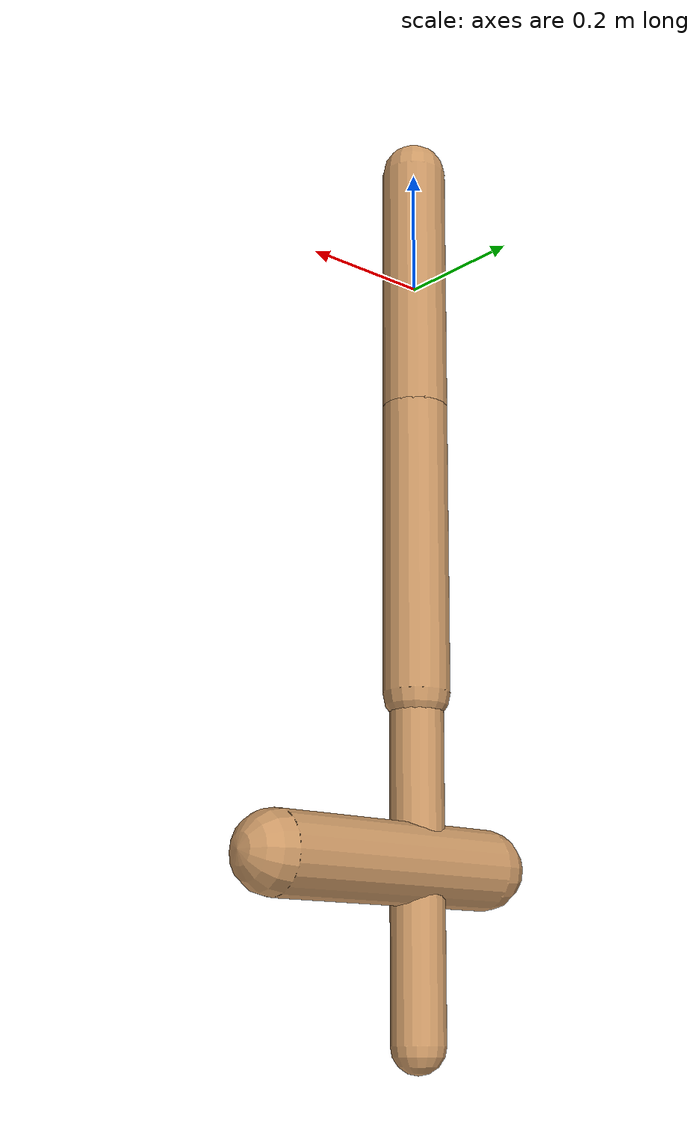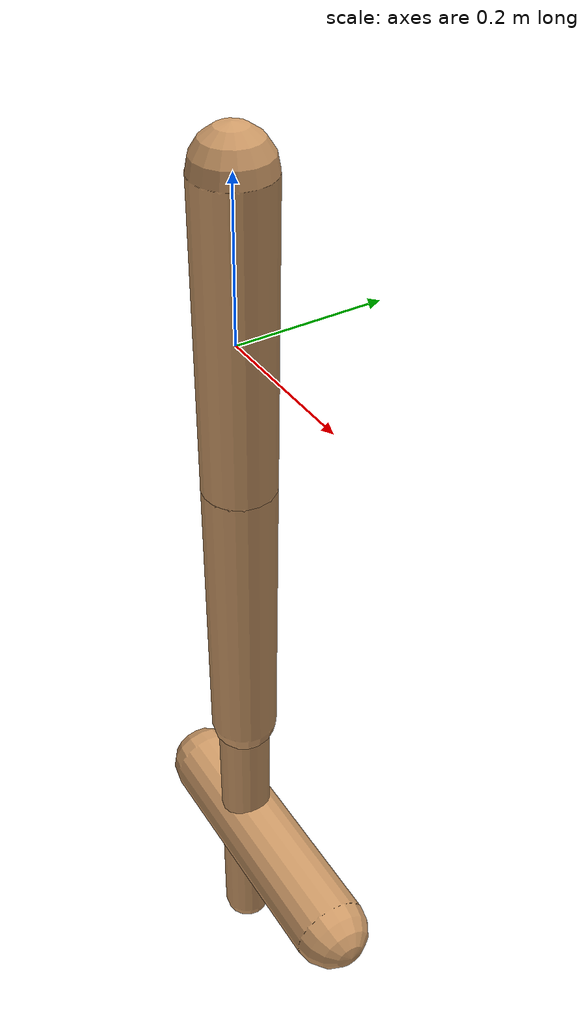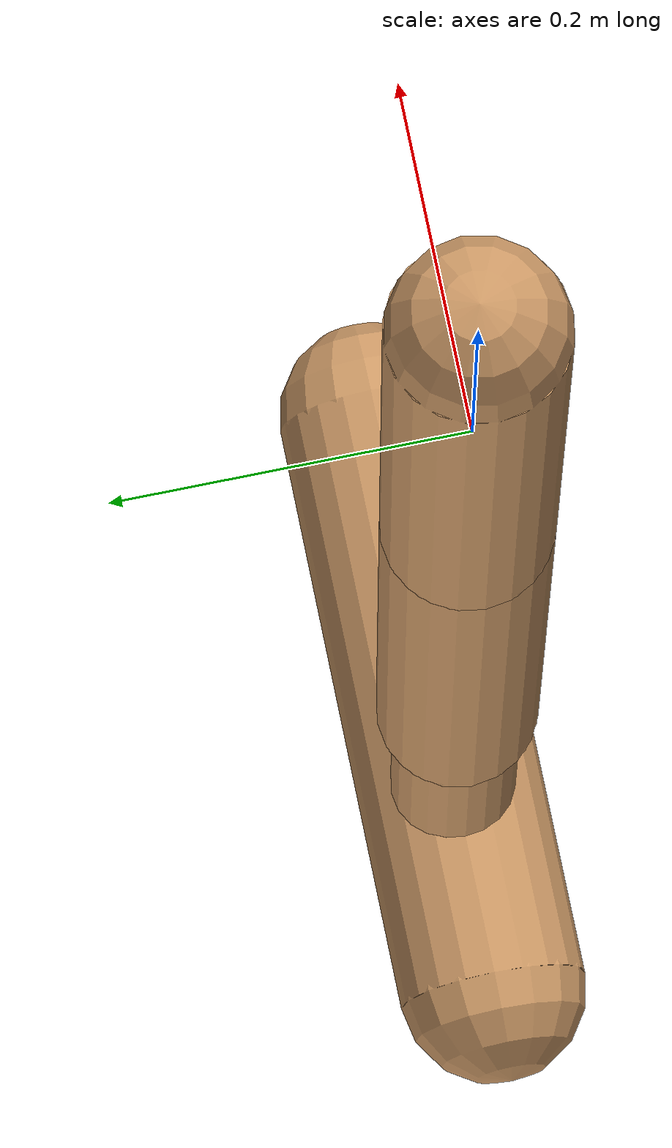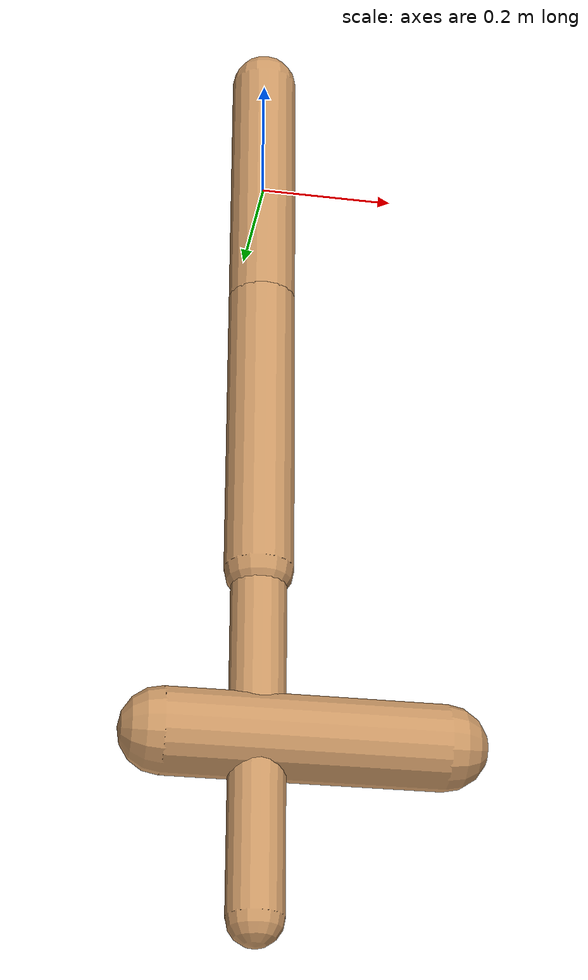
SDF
<?xml version="1.0"?>
<sdf version="1.8">
  <model name="hopper">

    <!-- Torso: vertical capsule (root — free-floating under physics) -->
    <link name="torso">
      <inertial>
        <pose>0 0 0 0 0 0</pose>
        <mass>3.67</mass>
        <inertia>
          <ixx>0.0512</ixx><ixy>0</ixy><ixz>0</ixz>
          <iyy>0.0512</iyy><iyz>0</iyz>
          <izz>0.00459</izz>
        </inertia>
      </inertial>
      <collision name="torso_collision">
        <geometry><capsule><radius>0.05</radius><length>0.4</length></capsule></geometry>
        <surface><friction><ode><mu>0.9</mu></ode></friction></surface>
      </collision>
      <visual name="torso_visual">
        <geometry><capsule><radius>0.05</radius><length>0.4</length></capsule></geometry>
        <material><diffuse>0.8 0.6 0.4 1</diffuse><ambient>0.8 0.6 0.4 1</ambient></material>
      </visual>
    </link>

    <joint name="thigh_joint" type="revolute">
      <pose relative_to="torso">0 0 -0.2 0 0 0</pose>
      <parent>torso</parent>
      <child>thigh</child>
      <axis>
        <xyz>0 -1 0</xyz>
        <limit>
          <lower>-2.618</lower>
          <upper>0</upper>
          <effort>200</effort>
          <velocity>100</velocity>
        </limit>
        <dynamics><damping>1.0</damping><friction>0.0</friction></dynamics>
      </axis>
    </joint>

    <!-- Thigh: capsule r=0.05, L=0.45, CoM 0.225 m below thigh_joint -->
    <link name="thigh">
      <pose relative_to="thigh_joint">0 0 0 0 0 0</pose>
      <inertial>
        <pose>0 0 -0.225 0 0 0</pose>
        <mass>4.06</mass>
        <inertia>
          <ixx>0.0711</ixx><ixy>0</ixy><ixz>0</ixz>
          <iyy>0.0711</iyy><iyz>0</iyz>
          <izz>0.00508</izz>
        </inertia>
      </inertial>
      <collision name="thigh_collision">
        <pose>0 0 -0.225 0 0 0</pose>
        <geometry><capsule><radius>0.05</radius><length>0.45</length></capsule></geometry>
        <surface><friction><ode><mu>0.9</mu></ode></friction></surface>
      </collision>
      <visual name="thigh_visual">
        <pose>0 0 -0.225 0 0 0</pose>
        <geometry><capsule><radius>0.05</radius><length>0.45</length></capsule></geometry>
        <material><diffuse>0.8 0.6 0.4 1</diffuse><ambient>0.8 0.6 0.4 1</ambient></material>
      </visual>
    </link>

    <!--
      leg_joint: at (0,0,-0.45) from thigh (= leg body at -0.7 + leg_joint pos +0.25 = -0.45).
    -->
    <joint name="leg_joint" type="revolute">
      <pose relative_to="thigh">0 0 -0.45 0 0 0</pose>
      <parent>thigh</parent>
      <child>leg</child>
      <axis>
        <xyz>0 -1 0</xyz>
        <limit>
          <lower>-2.618</lower>
          <upper>0</upper>
          <effort>200</effort>
          <velocity>100</velocity>
        </limit>
        <dynamics><damping>1.0</damping><friction>0.0</friction></dynamics>
      </axis>
    </joint>

    <!-- Leg: capsule r=0.04, L=0.5, CoM 0.25 m below leg_joint -->
    <link name="leg">
      <pose relative_to="leg_joint">0 0 0 0 0 0</pose>
      <inertial>
        <pose>0 0 -0.25 0 0 0</pose>
        <mass>2.78</mass>
        <inertia>
          <ixx>0.0590</ixx><ixy>0</ixy><ixz>0</ixz>
          <iyy>0.0590</iyy><iyz>0</iyz>
          <izz>0.00222</izz>
        </inertia>
      </inertial>
      <collision name="leg_collision">
        <pose>0 0 -0.25 0 0 0</pose>
        <geometry><capsule><radius>0.04</radius><length>0.5</length></capsule></geometry>
        <surface><friction><ode><mu>0.9</mu></ode></friction></surface>
      </collision>
      <visual name="leg_visual">
        <pose>0 0 -0.25 0 0 0</pose>
        <geometry><capsule><radius>0.04</radius><length>0.5</length></capsule></geometry>
        <material><diffuse>0.8 0.6 0.4 1</diffuse><ambient>0.8 0.6 0.4 1</ambient></material>
      </visual>
    </link>

    <joint name="foot_joint" type="revolute">
      <pose relative_to="leg">0 0 -0.25 0 0 0</pose>
      <parent>leg</parent>
      <child>foot</child>
      <axis>
        <xyz>0 -1 0</xyz>
        <limit>
          <lower>-0.7854</lower>
          <upper>0.7854</upper>
          <effort>200</effort>
          <velocity>100</velocity>
        </limit>
        <dynamics><damping>1.0</damping><friction>0.0</friction></dynamics>
      </axis>
    </joint>

    <!--
      Foot: horizontal capsule (pitch=π/2 → along X), r=0.06, L=0.39.
      CoM at (0.065, 0, 0) from foot_joint.
      High friction for stable contact (mu=2.0 matching MuJoCo).
    -->
    <link name="foot">
      <pose relative_to="foot_joint">0 0 0 0 0 0</pose>
      <inertial>
        <pose>0.065 0 0 0 0 0</pose>
        <mass>5.31</mass>
        <!-- Capsule horizontal: Ixx=m*r²/2, Iyy=Izz=m*(3r²+L²)/12 -->
        <inertia>
          <ixx>0.00956</ixx><ixy>0</ixy><ixz>0</ixz>
          <iyy>0.07213</iyy><iyz>0</iyz>
          <izz>0.07213</izz>
        </inertia>
      </inertial>
      <collision name="foot_collision">
        <!-- Capsule at (0.065, 0, 0), rotated 90° around Y to lie along X -->
        <pose>0.065 0 0 0 1.5708 0</pose>
        <geometry><capsule><radius>0.06</radius><length>0.39</length></capsule></geometry>
        <surface>
          <friction>
            <ode><mu>2.0</mu><mu2>2.0</mu2></ode>
          </friction>
        </surface>
      </collision>
      <visual name="foot_visual">
        <pose>0.065 0 0 0 1.5708 0</pose>
        <geometry><capsule><radius>0.06</radius><length>0.39</length></capsule></geometry>
        <material><diffuse>0.8 0.6 0.4 1</diffuse><ambient>0.8 0.6 0.4 1</ambient></material>
      </visual>
    </link>

    <!-- Force controllers: /model/hopper/joint/{name}/cmd_force (gz.msgs.Double)
         env scales action [-1,1] × 200 N·m -->
    <plugin filename="gz-sim-joint-controller-system"
            name="gz::sim::systems::JointController">
      <joint_name>thigh_joint</joint_name>
      <use_force_commands>true</use_force_commands>
      <cmd_max>200</cmd_max>
      <cmd_min>-200</cmd_min>
    </plugin>

    <plugin filename="gz-sim-joint-controller-system"
            name="gz::sim::systems::JointController">
      <joint_name>leg_joint</joint_name>
      <use_force_commands>true</use_force_commands>
      <cmd_max>200</cmd_max>
      <cmd_min>-200</cmd_min>
    </plugin>

    <plugin filename="gz-sim-joint-controller-system"
            name="gz::sim::systems::JointController">
      <joint_name>foot_joint</joint_name>
      <use_force_commands>true</use_force_commands>
      <cmd_max>200</cmd_max>
      <cmd_min>-200</cmd_min>
    </plugin>

    <!-- Joint state publisher for all controlled joints -->
    <plugin filename="gz-sim-joint-state-publisher-system"
            name="gz::sim::systems::JointStatePublisher">
      <joint_name>thigh_joint</joint_name>
      <joint_name>leg_joint</joint_name>
      <joint_name>foot_joint</joint_name>
    </plugin>
  </model>
</sdf>
